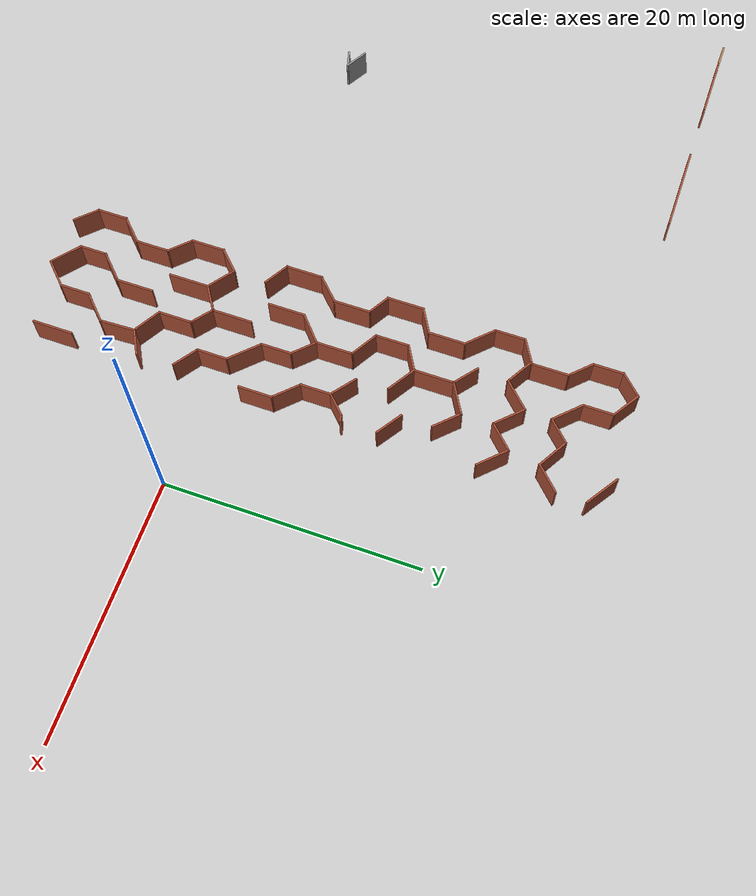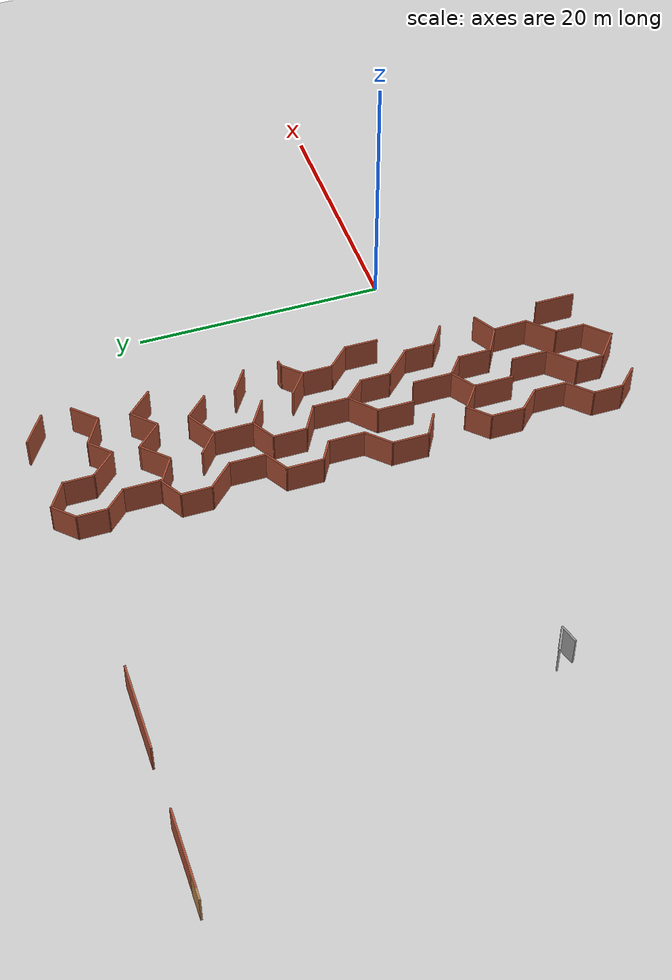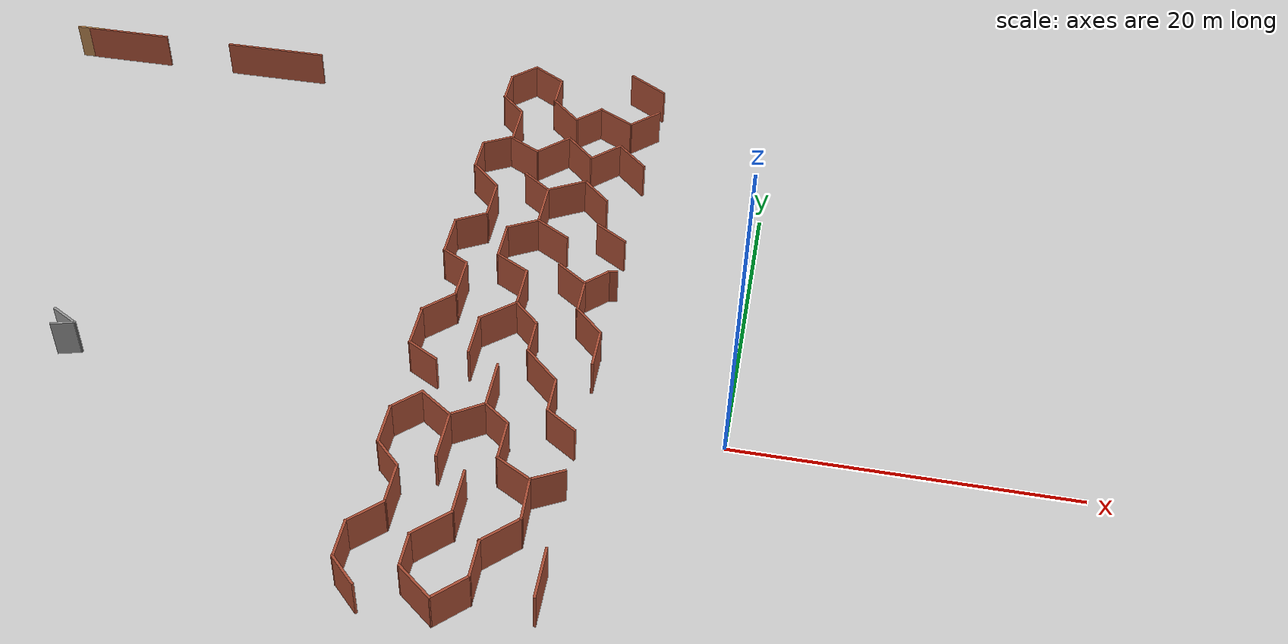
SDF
<sdf version="1.6">
 <world name="default">
  <model name="maze_rect_3">
   <pose>4e-06 -9.9e-05 0 0 -0 1.57001</pose>
   <link name="Wall_100">
    <collision name="Wall_100_Collision">
     <geometry><box><size>3 0.15 2.5</size></box></geometry>
     <pose>0 0 1.25 0 -0 0</pose>
    </collision>
    <visual name="Wall_100_Visual">
     <pose>0 0 1.25 0 -0 0</pose>
     <geometry><box><size>3 0.15 2.5</size></box></geometry>
     <material>
      <script><uri>file://media/materials/scripts/gazebo.material</uri><name>Gazebo/Bricks</name></script>
      <ambient>1 1 1 1</ambient>
     </material>
     <meta><layer>0</layer></meta>
    </visual>
    <pose>8.41531 17.2964 0 0 -0 0</pose>
   </link>
   <link name="Wall_101">
    <collision name="Wall_101_Collision">
     <geometry><box><size>2 0.15 2.5</size></box></geometry>
     <pose>0 0 1.25 0 -0 0</pose>
    </collision>
    <visual name="Wall_101_Visual">
     <pose>0 0 1.25 0 -0 0</pose>
     <geometry><box><size>2 0.15 2.5</size></box></geometry>
     <material>
      <script><uri>file://media/materials/scripts/gazebo.material</uri><name>Gazebo/Bricks</name></script>
      <ambient>1 1 1 1</ambient>
     </material>
     <meta><layer>0</layer></meta>
    </visual>
    <pose>10.3028 18.0975 0 0 -0 1.0472</pose>
   </link>
   <link name="Wall_102">
    <collision name="Wall_102_Collision">
     <geometry><box><size>3 0.15 2.5</size></box></geometry>
     <pose>0 0 1.25 0 -0 0</pose>
    </collision>
    <visual name="Wall_102_Visual">
     <pose>0 0 1.25 0 -0 0</pose>
     <geometry><box><size>3 0.15 2.5</size></box></geometry>
     <material>
      <script><uri>file://media/materials/scripts/gazebo.material</uri><name>Gazebo/Bricks</name></script>
      <ambient>1 1 1 1</ambient>
     </material>
     <meta><layer>0</layer></meta>
    </visual>
    <pose>12.1903 18.8985 0 0 -0 0</pose>
   </link>
   <link name="Wall_103">
    <collision name="Wall_103_Collision">
     <geometry><box><size>2.25 0.15 2.5</size></box></geometry>
     <pose>0 0 1.25 0 -0 0</pose>
    </collision>
    <visual name="Wall_103_Visual">
     <pose>0 0 1.25 0 -0 0</pose>
     <geometry><box><size>2.25 0.15 2.5</size></box></geometry>
     <material>
      <script><uri>file://media/materials/scripts/gazebo.material</uri><name>Gazebo/Bricks</name></script>
      <ambient>1 1 1 1</ambient>
     </material>
     <meta><layer>0</layer></meta>
    </visual>
    <pose>14.1403 17.9892 0 0 -0 -1.0472</pose>
   </link>
   <link name="Wall_104">
    <collision name="Wall_104_Collision">
     <geometry><box><size>3 0.15 2.5</size></box></geometry>
     <pose>0 0 1.25 0 -0 0</pose>
    </collision>
    <visual name="Wall_104_Visual">
     <pose>0 0 1.25 0 -0 0</pose>
     <geometry><box><size>3 0.15 2.5</size></box></geometry>
     <material>
      <script><uri>file://media/materials/scripts/gazebo.material</uri><name>Gazebo/Bricks</name></script>
      <ambient>1 1 1 1</ambient>
     </material>
     <meta><layer>0</layer></meta>
    </visual>
    <pose>16.0903 17.0799 0 0 -0 0</pose>
   </link>
   <link name="Wall_105">
    <collision name="Wall_105_Collision">
     <geometry><box><size>2.75 0.15 2.5</size></box></geometry>
     <pose>0 0 1.25 0 -0 0</pose>
    </collision>
    <visual name="Wall_105_Visual">
     <pose>0 0 1.25 0 -0 0</pose>
     <geometry><box><size>2.75 0.15 2.5</size></box></geometry>
     <material>
      <script><uri>file://media/materials/scripts/gazebo.material</uri><name>Gazebo/Bricks</name></script>
      <ambient>1 1 1 1</ambient>
     </material>
     <meta><layer>0</layer></meta>
    </visual>
    <pose>18.4346 17.9991 0 0 -0 0.785398</pose>
   </link>
   <link name="Wall_106">
    <collision name="Wall_106_Collision">
     <geometry><box><size>2.5 0.15 2.5</size></box></geometry>
     <pose>0 0 1.25 0 -0 0</pose>
    </collision>
    <visual name="Wall_106_Visual">
     <pose>0 0 1.25 0 -0 0</pose>
     <geometry><box><size>2.5 0.15 2.5</size></box></geometry>
     <material>
      <script><uri>file://media/materials/scripts/gazebo.material</uri><name>Gazebo/Bricks</name></script>
      <ambient>1 1 1 1</ambient>
     </material>
     <meta><layer>0</layer></meta>
    </visual>
    <pose>20.5288 18.9183 0 0 -0 0</pose>
   </link>
   <link name="Wall_107">
    <collision name="Wall_107_Collision">
     <geometry><box><size>2.25 0.15 2.5</size></box></geometry>
     <pose>0 0 1.25 0 -0 0</pose>
    </collision>
    <visual name="Wall_107_Visual">
     <pose>0 0 1.25 0 -0 0</pose>
     <geometry><box><size>2.25 0.15 2.5</size></box></geometry>
     <material>
      <script><uri>file://media/materials/scripts/gazebo.material</uri><name>Gazebo/Bricks</name></script>
      <ambient>1 1 1 1</ambient>
     </material>
     <meta><layer>0</layer></meta>
    </visual>
    <pose>22.2288 18.009 0 0 -0 -1.0472</pose>
   </link>
   <link name="Wall_108">
    <collision name="Wall_108_Collision">
     <geometry><box><size>3 0.15 2.5</size></box></geometry>
     <pose>0 0 1.25 0 -0 0</pose>
    </collision>
    <visual name="Wall_108_Visual">
     <pose>0 0 1.25 0 -0 0</pose>
     <geometry><box><size>3 0.15 2.5</size></box></geometry>
     <material>
      <script><uri>file://media/materials/scripts/gazebo.material</uri><name>Gazebo/Bricks</name></script>
      <ambient>1 1 1 1</ambient>
     </material>
     <meta><layer>0</layer></meta>
    </visual>
    <pose>24.1788 17.0997 0 0 -0 0</pose>
   </link>
   <link name="Wall_109">
    <collision name="Wall_109_Collision">
     <geometry><box><size>2.25 0.15 2.5</size></box></geometry>
     <pose>0 0 1.25 0 -0 0</pose>
    </collision>
    <visual name="Wall_109_Visual">
     <pose>0 0 1.25 0 -0 0</pose>
     <geometry><box><size>2.25 0.15 2.5</size></box></geometry>
     <material>
      <script><uri>file://media/materials/scripts/gazebo.material</uri><name>Gazebo/Bricks</name></script>
      <ambient>1 1 1 1</ambient>
     </material>
     <meta><layer>0</layer></meta>
    </visual>
    <pose>26.3463 17.8422 0 0 -0 0.785398</pose>
   </link>
   <link name="Wall_110">
    <collision name="Wall_110_Collision">
     <geometry><box><size>2.5 0.15 2.5</size></box></geometry>
     <pose>0 0 1.25 0 -0 0</pose>
    </collision>
    <visual name="Wall_110_Visual">
     <pose>0 0 1.25 0 -0 0</pose>
     <geometry><box><size>2.5 0.15 2.5</size></box></geometry>
     <material>
      <script><uri>file://media/materials/scripts/gazebo.material</uri><name>Gazebo/Bricks</name></script>
      <ambient>1 1 1 1</ambient>
     </material>
     <meta><layer>0</layer></meta>
    </visual>
    <pose>28.2637 18.5846 0 0 -0 0</pose>
   </link>
   <link name="Wall_111">
    <collision name="Wall_111_Collision">
     <geometry><box><size>2.25 0.15 2.5</size></box></geometry>
     <pose>0 0 1.25 0 -0 0</pose>
    </collision>
    <visual name="Wall_111_Visual">
     <pose>0 0 1.25 0 -0 0</pose>
     <geometry><box><size>2.25 0.15 2.5</size></box></geometry>
     <material>
      <script><uri>file://media/materials/scripts/gazebo.material</uri><name>Gazebo/Bricks</name></script>
      <ambient>1 1 1 1</ambient>
     </material>
     <meta><layer>0</layer></meta>
    </visual>
    <pose>30.1812 17.8422 0 0 -0 -0.785398</pose>
   </link>
   <link name="Wall_326">
    <collision name="Wall_326_Collision">
     <geometry><box><size>2.5 0.15 2.5</size></box></geometry>
     <pose>0 0 1.25 0 -0 0</pose>
    </collision>
    <visual name="Wall_326_Visual">
     <pose>0 0 1.25 0 -0 0</pose>
     <geometry><box><size>2.5 0.15 2.5</size></box></geometry>
     <material>
      <script><uri>file://media/materials/scripts/gazebo.material</uri><name>Gazebo/Bricks</name></script>
      <ambient>1 1 1 1</ambient>
     </material>
     <meta><layer>0</layer></meta>
    </visual>
    <pose>26.4599 8.67528 0 0 -0 2.35619</pose>
   </link>
   <link name="Wall_327">
    <collision name="Wall_327_Collision">
     <geometry><box><size>2.75 0.15 2.5</size></box></geometry>
     <pose>0 0 1.25 0 -0 0</pose>
    </collision>
    <visual name="Wall_327_Visual">
     <pose>0 0 1.25 0 -0 0</pose>
     <geometry><box><size>2.75 0.15 2.5</size></box></geometry>
     <material>
      <script><uri>file://media/materials/scripts/gazebo.material</uri><name>Gazebo/Bricks</name></script>
      <ambient>1 1 1 1</ambient>
     </material>
     <meta><layer>0</layer></meta>
    </visual>
    <pose>26.279 10.632 0 0 -0 1.0472</pose>
   </link>
   <link name="Wall_328">
    <collision name="Wall_328_Collision">
     <geometry><box><size>2.25 0.15 2.5</size></box></geometry>
     <pose>0 0 1.25 0 -0 0</pose>
    </collision>
    <visual name="Wall_328_Visual">
     <pose>0 0 1.25 0 -0 0</pose>
     <geometry><box><size>2.25 0.15 2.5</size></box></geometry>
     <material>
      <script><uri>file://media/materials/scripts/gazebo.material</uri><name>Gazebo/Bricks</name></script>
      <ambient>1 1 1 1</ambient>
     </material>
     <meta><layer>0</layer></meta>
    </visual>
    <pose>26.1866 12.5003 0 0 -0 2.35619</pose>
   </link>
   <link name="Wall_329">
    <collision name="Wall_329_Collision">
     <geometry><box><size>2.75 0.15 2.5</size></box></geometry>
     <pose>0 0 1.25 0 -0 0</pose>
    </collision>
    <visual name="Wall_329_Visual">
     <pose>0 0 1.25 0 -0 0</pose>
     <geometry><box><size>2.75 0.15 2.5</size></box></geometry>
     <material>
      <script><uri>file://media/materials/scripts/gazebo.material</uri><name>Gazebo/Bricks</name></script>
      <ambient>1 1 1 1</ambient>
     </material>
     <meta><layer>0</layer></meta>
    </visual>
    <pose>26.3633 14.162 0 0 -0 0.785398</pose>
   </link>
   <link name="Wall_330">
    <collision name="Wall_330_Collision">
     <geometry><box><size>2.5 0.15 2.5</size></box></geometry>
     <pose>0 0 1.25 0 -0 0</pose>
    </collision>
    <visual name="Wall_330_Visual">
     <pose>0 0 1.25 0 -0 0</pose>
     <geometry><box><size>2.5 0.15 2.5</size></box></geometry>
     <material>
      <script><uri>file://media/materials/scripts/gazebo.material</uri><name>Gazebo/Bricks</name></script>
      <ambient>1 1 1 1</ambient>
     </material>
     <meta><layer>0</layer></meta>
    </visual>
    <pose>28.4576 15.0812 0 0 -0 0</pose>
   </link>
   <link name="Wall_331">
    <collision name="Wall_331_Collision">
     <geometry><box><size>2.54607 0.15 2.5</size></box></geometry>
     <pose>0 0 1.25 0 -0 0</pose>
    </collision>
    <visual name="Wall_331_Visual">
     <pose>0 0 1.25 0 -0 0</pose>
     <geometry><box><size>2.54607 0.15 2.5</size></box></geometry>
     <material>
      <script><uri>file://media/materials/scripts/gazebo.material</uri><name>Gazebo/Bricks</name></script>
      <ambient>1 1 1 1</ambient>
     </material>
     <meta><layer>0</layer></meta>
    </visual>
    <pose>30.2781 16.0904 0 0 -0 1.00176</pose>
   </link>
   <link name="Wall_333">
    <collision name="Wall_333_Collision">
     <geometry><box><size>3.00629 0.15 2.5</size></box></geometry>
     <pose>0 0 1.25 0 -0 0</pose>
    </collision>
    <visual name="Wall_333_Visual">
     <pose>0 0 1.25 0 -0 0</pose>
     <geometry><box><size>3.00629 0.15 2.5</size></box></geometry>
     <material>
      <script><uri>file://media/materials/scripts/gazebo.material</uri><name>Gazebo/Bricks</name></script>
      <ambient>1 1 1 1</ambient>
     </material>
     <meta><layer>0</layer></meta>
    </visual>
    <pose>30.4256 9.03758 0 0 -0 -2.15263</pose>
   </link>
   <link name="Wall_349">
    <collision name="Wall_349_Collision">
     <geometry><box><size>2.75 0.15 2.5</size></box></geometry>
     <pose>0 0 1.25 0 -0 0</pose>
    </collision>
    <visual name="Wall_349_Visual">
     <pose>0 0 1.25 0 -0 0</pose>
     <geometry><box><size>2.75 0.15 2.5</size></box></geometry>
     <material>
      <script><uri>file://media/materials/scripts/gazebo.material</uri><name>Gazebo/Bricks</name></script>
      <ambient>1 1 1 1</ambient>
     </material>
     <meta><layer>0</layer></meta>
    </visual>
    <pose>22.2555 8.91948 0 0 -0 0.785398</pose>
   </link>
   <link name="Wall_350">
    <collision name="Wall_350_Collision">
     <geometry><box><size>2.5 0.15 2.5</size></box></geometry>
     <pose>0 0 1.25 0 -0 0</pose>
    </collision>
    <visual name="Wall_350_Visual">
     <pose>0 0 1.25 0 -0 0</pose>
     <geometry><box><size>2.5 0.15 2.5</size></box></geometry>
     <material>
      <script><uri>file://media/materials/scripts/gazebo.material</uri><name>Gazebo/Bricks</name></script>
      <ambient>1 1 1 1</ambient>
     </material>
     <meta><layer>0</layer></meta>
    </visual>
    <pose>22.3439 10.6696 0 0 -0 2.35619</pose>
   </link>
   <link name="Wall_351">
    <collision name="Wall_351_Collision">
     <geometry><box><size>2.75 0.15 2.5</size></box></geometry>
     <pose>0 0 1.25 0 -0 0</pose>
    </collision>
    <visual name="Wall_351_Visual">
     <pose>0 0 1.25 0 -0 0</pose>
     <geometry><box><size>2.75 0.15 2.5</size></box></geometry>
     <material>
      <script><uri>file://media/materials/scripts/gazebo.material</uri><name>Gazebo/Bricks</name></script>
      <ambient>1 1 1 1</ambient>
     </material>
     <meta><layer>0</layer></meta>
    </visual>
    <pose>22.4323 12.4197 0 0 -0 0.785398</pose>
   </link>
   <link name="Wall_352">
    <collision name="Wall_352_Collision">
     <geometry><box><size>2.75 0.15 2.5</size></box></geometry>
     <pose>0 0 1.25 0 -0 0</pose>
    </collision>
    <visual name="Wall_352_Visual">
     <pose>0 0 1.25 0 -0 0</pose>
     <geometry><box><size>2.75 0.15 2.5</size></box></geometry>
     <material>
      <script><uri>file://media/materials/scripts/gazebo.material</uri><name>Gazebo/Bricks</name></script>
      <ambient>1 1 1 1</ambient>
     </material>
     <meta><layer>0</layer></meta>
    </visual>
    <pose>22.4323 14.2581 0 0 -0 2.35619</pose>
   </link>
   <link name="Wall_354">
    <collision name="Wall_354_Collision">
     <geometry><box><size>2.5 0.15 2.5</size></box></geometry>
     <pose>0 0 1.25 0 -0 0</pose>
    </collision>
    <visual name="Wall_354_Visual">
     <pose>0 0 1.25 0 -0 0</pose>
     <geometry><box><size>2.5 0.15 2.5</size></box></geometry>
     <material>
      <script><uri>file://media/materials/scripts/gazebo.material</uri><name>Gazebo/Bricks</name></script>
      <ambient>1 1 1 1</ambient>
     </material>
     <meta><layer>0</layer></meta>
    </visual>
    <pose>22.1006 16.195 0 0 -0 1.0472</pose>
   </link>
   <link name="Wall_399">
    <collision name="Wall_399_Collision">
     <geometry><box><size>2.36913 0.15 2.5</size></box></geometry>
     <pose>0 0 1.25 0 -0 0</pose>
    </collision>
    <visual name="Wall_399_Visual">
     <pose>0 0 1.25 0 -0 0</pose>
     <geometry><box><size>2.36913 0.15 2.5</size></box></geometry>
     <material>
      <script><uri>file://media/materials/scripts/gazebo.material</uri><name>Gazebo/Bricks</name></script>
      <ambient>1 1 1 1</ambient>
     </material>
     <meta><layer>0</layer></meta>
    </visual>
    <pose>14.3383 8.97913 0 0 -0 -2.15123</pose>
   </link>
   <link name="Wall_401">
    <collision name="Wall_401_Collision">
     <geometry><box><size>2.5 0.15 2.5</size></box></geometry>
     <pose>0 0 1.25 0 -0 0</pose>
    </collision>
    <visual name="Wall_401_Visual">
     <pose>0 0 1.25 0 -0 0</pose>
     <geometry><box><size>2.5 0.15 2.5</size></box></geometry>
     <material>
      <script><uri>file://media/materials/scripts/gazebo.material</uri><name>Gazebo/Bricks</name></script>
      <ambient>1 1 1 1</ambient>
     </material>
     <meta><layer>0</layer></meta>
    </visual>
    <pose>18.211 10.632 0 0 -0 0.785398</pose>
   </link>
   <link name="Wall_402">
    <collision name="Wall_402_Collision">
     <geometry><box><size>2.75 0.15 2.5</size></box></geometry>
     <pose>0 0 1.25 0 -0 0</pose>
    </collision>
    <visual name="Wall_402_Visual">
     <pose>0 0 1.25 0 -0 0</pose>
     <geometry><box><size>2.75 0.15 2.5</size></box></geometry>
     <material>
      <script><uri>file://media/materials/scripts/gazebo.material</uri><name>Gazebo/Bricks</name></script>
      <ambient>1 1 1 1</ambient>
     </material>
     <meta><layer>0</layer></meta>
    </visual>
    <pose>18.3918 12.5887 0 0 -0 2.0944</pose>
   </link>
   <link name="Wall_403">
    <collision name="Wall_403_Collision">
     <geometry><box><size>3.25 0.15 2.5</size></box></geometry>
     <pose>0 0 1.25 0 -0 0</pose>
    </collision>
    <visual name="Wall_403_Visual">
     <pose>0 0 1.25 0 -0 0</pose>
     <geometry><box><size>3.25 0.15 2.5</size></box></geometry>
     <material>
      <script><uri>file://media/materials/scripts/gazebo.material</uri><name>Gazebo/Bricks</name></script>
      <ambient>1 1 1 1</ambient>
     </material>
     <meta><layer>0</layer></meta>
    </visual>
    <pose>16.1918 13.7145 0 0 -0 3.14159</pose>
   </link>
   <link name="Wall_404">
    <collision name="Wall_404_Collision">
     <geometry><box><size>2.25 0.15 2.5</size></box></geometry>
     <pose>0 0 1.25 0 -0 0</pose>
    </collision>
    <visual name="Wall_404_Visual">
     <pose>0 0 1.25 0 -0 0</pose>
     <geometry><box><size>2.25 0.15 2.5</size></box></geometry>
     <material>
      <script><uri>file://media/materials/scripts/gazebo.material</uri><name>Gazebo/Bricks</name></script>
      <ambient>1 1 1 1</ambient>
     </material>
     <meta><layer>0</layer></meta>
    </visual>
    <pose>14.1168 14.6239 0 0 -0 2.0944</pose>
   </link>
   <link name="Wall_405">
    <collision name="Wall_405_Collision">
     <geometry><box><size>2.75 0.15 2.5</size></box></geometry>
     <pose>0 0 1.25 0 -0 0</pose>
    </collision>
    <visual name="Wall_405_Visual">
     <pose>0 0 1.25 0 -0 0</pose>
     <geometry><box><size>2.75 0.15 2.5</size></box></geometry>
     <material>
      <script><uri>file://media/materials/scripts/gazebo.material</uri><name>Gazebo/Bricks</name></script>
      <ambient>1 1 1 1</ambient>
     </material>
     <meta><layer>0</layer></meta>
    </visual>
    <pose>12.2918 15.5332 0 0 -0 3.14159</pose>
   </link>
   <link name="Wall_406">
    <collision name="Wall_406_Collision">
     <geometry><box><size>2.5 0.15 2.5</size></box></geometry>
     <pose>0 0 1.25 0 -0 0</pose>
    </collision>
    <visual name="Wall_406_Visual">
     <pose>0 0 1.25 0 -0 0</pose>
     <geometry><box><size>2.5 0.15 2.5</size></box></geometry>
     <material>
      <script><uri>file://media/materials/scripts/gazebo.material</uri><name>Gazebo/Bricks</name></script>
      <ambient>1 1 1 1</ambient>
     </material>
     <meta><layer>0</layer></meta>
    </visual>
    <pose>10.4043 14.5156 0 0 -0 -2.0944</pose>
   </link>
   <link name="Wall_407">
    <collision name="Wall_407_Collision">
     <geometry><box><size>3 0.15 2.5</size></box></geometry>
     <pose>0 0 1.25 0 -0 0</pose>
    </collision>
    <visual name="Wall_407_Visual">
     <pose>0 0 1.25 0 -0 0</pose>
     <geometry><box><size>3 0.15 2.5</size></box></geometry>
     <material>
      <script><uri>file://media/materials/scripts/gazebo.material</uri><name>Gazebo/Bricks</name></script>
      <ambient>1 1 1 1</ambient>
     </material>
     <meta><layer>0</layer></meta>
    </visual>
    <pose>8.39183 13.498 0 0 -0 3.14159</pose>
   </link>
   <link name="Wall_408">
    <collision name="Wall_408_Collision">
     <geometry><box><size>2.25 0.15 2.5</size></box></geometry>
     <pose>0 0 1.25 0 -0 0</pose>
    </collision>
    <visual name="Wall_408_Visual">
     <pose>0 0 1.25 0 -0 0</pose>
     <geometry><box><size>2.25 0.15 2.5</size></box></geometry>
     <material>
      <script><uri>file://media/materials/scripts/gazebo.material</uri><name>Gazebo/Bricks</name></script>
      <ambient>1 1 1 1</ambient>
     </material>
     <meta><layer>0</layer></meta>
    </visual>
    <pose>6.22436 12.7556 0 0 -0 -2.35619</pose>
   </link>
   <link name="Wall_409">
    <collision name="Wall_409_Collision">
     <geometry><box><size>2.5 0.15 2.5</size></box></geometry>
     <pose>0 0 1.25 0 -0 0</pose>
    </collision>
    <visual name="Wall_409_Visual">
     <pose>0 0 1.25 0 -0 0</pose>
     <geometry><box><size>2.5 0.15 2.5</size></box></geometry>
     <material>
      <script><uri>file://media/materials/scripts/gazebo.material</uri><name>Gazebo/Bricks</name></script>
      <ambient>1 1 1 1</ambient>
     </material>
     <meta><layer>0</layer></meta>
    </visual>
    <pose>4.3069 12.0131 0 0 -0 3.14159</pose>
   </link>
   <link name="Wall_410">
    <collision name="Wall_410_Collision">
     <geometry><box><size>3 0.15 2.5</size></box></geometry>
     <pose>0 0 1.25 0 -0 0</pose>
    </collision>
    <visual name="Wall_410_Visual">
     <pose>0 0 1.25 0 -0 0</pose>
     <geometry><box><size>3 0.15 2.5</size></box></geometry>
     <material>
      <script><uri>file://media/materials/scripts/gazebo.material</uri><name>Gazebo/Bricks</name></script>
      <ambient>1 1 1 1</ambient>
     </material>
     <meta><layer>0</layer></meta>
    </visual>
    <pose>2.12428 11.0055 0 0 -0 -2.35619</pose>
   </link>
   <link name="Wall_411">
    <collision name="Wall_411_Collision">
     <geometry><box><size>2.5 0.15 2.5</size></box></geometry>
     <pose>0 0 1.25 0 -0 0</pose>
    </collision>
    <visual name="Wall_411_Visual">
     <pose>0 0 1.25 0 -0 0</pose>
     <geometry><box><size>2.5 0.15 2.5</size></box></geometry>
     <material>
      <script><uri>file://media/materials/scripts/gazebo.material</uri><name>Gazebo/Bricks</name></script>
      <ambient>1 1 1 1</ambient>
     </material>
     <meta><layer>0</layer></meta>
    </visual>
    <pose>-0.058351 9.99786 0 0 -0 3.14159</pose>
   </link>
   <link name="Wall_412">
    <collision name="Wall_412_Collision">
     <geometry><box><size>2.274 0.15 2.5</size></box></geometry>
     <pose>0 0 1.25 0 -0 0</pose>
    </collision>
    <visual name="Wall_412_Visual">
     <pose>0 0 1.25 0 -0 0</pose>
     <geometry><box><size>2.274 0.15 2.5</size></box></geometry>
     <material>
      <script><uri>file://media/materials/scripts/gazebo.material</uri><name>Gazebo/Bricks</name></script>
      <ambient>1 1 1 1</ambient>
     </material>
     <meta><layer>0</layer></meta>
    </visual>
    <pose>-1.83906 9.12552 0 0 -0 -2.17772</pose>
   </link>
   <link name="Wall_416">
    <collision name="Wall_416_Collision">
     <geometry><box><size>2.75 0.15 2.5</size></box></geometry>
     <pose>0 0 1.25 0 -0 0</pose>
    </collision>
    <visual name="Wall_416_Visual">
     <pose>0 0 1.25 0 -0 0</pose>
     <geometry><box><size>2.75 0.15 2.5</size></box></geometry>
     <material>
      <script><uri>file://media/materials/scripts/gazebo.material</uri><name>Gazebo/Bricks</name></script>
      <ambient>1 1 1 1</ambient>
     </material>
     <meta><layer>0</layer></meta>
    </visual>
    <pose>4.15157 8.15938 0 0 -0 0</pose>
   </link>
   <link name="Wall_417">
    <collision name="Wall_417_Collision">
     <geometry><box><size>2.5 0.15 2.5</size></box></geometry>
     <pose>0 0 1.25 0 -0 0</pose>
    </collision>
    <visual name="Wall_417_Visual">
     <pose>0 0 1.25 0 -0 0</pose>
     <geometry><box><size>2.5 0.15 2.5</size></box></geometry>
     <material>
      <script><uri>file://media/materials/scripts/gazebo.material</uri><name>Gazebo/Bricks</name></script>
      <ambient>1 1 1 1</ambient>
     </material>
     <meta><layer>0</layer></meta>
    </visual>
    <pose>6.28242 8.99023 0 0 -0 0.785398</pose>
   </link>
   <link name="Wall_418">
    <collision name="Wall_418_Collision">
     <geometry><box><size>2.5 0.15 2.5</size></box></geometry>
     <pose>0 0 1.25 0 -0 0</pose>
    </collision>
    <visual name="Wall_418_Visual">
     <pose>0 0 1.25 0 -0 0</pose>
     <geometry><box><size>2.5 0.15 2.5</size></box></geometry>
     <material>
      <script><uri>file://media/materials/scripts/gazebo.material</uri><name>Gazebo/Bricks</name></script>
      <ambient>1 1 1 1</ambient>
     </material>
     <meta><layer>0</layer></meta>
    </visual>
    <pose>8.28827 9.82108 0 0 -0 0</pose>
   </link>
   <link name="Wall_419">
    <collision name="Wall_419_Collision">
     <geometry><box><size>2 0.15 2.5</size></box></geometry>
     <pose>0 0 1.25 0 -0 0</pose>
    </collision>
    <visual name="Wall_419_Visual">
     <pose>0 0 1.25 0 -0 0</pose>
     <geometry><box><size>2 0.15 2.5</size></box></geometry>
     <material>
      <script><uri>file://media/materials/scripts/gazebo.material</uri><name>Gazebo/Bricks</name></script>
      <ambient>1 1 1 1</ambient>
     </material>
     <meta><layer>0</layer></meta>
    </visual>
    <pose>10.1173 9.16701 0 0 -0 -0.785398</pose>
   </link>
   <link name="Wall_420">
    <collision name="Wall_420_Collision">
     <geometry><box><size>0.624192 0.15 2.5</size></box></geometry>
     <pose>0 0 1.25 0 -0 0</pose>
    </collision>
    <visual name="Wall_420_Visual">
     <pose>0 0 1.25 0 -0 0</pose>
     <geometry><box><size>0.624192 0.15 2.5</size></box></geometry>
     <material>
      <script><uri>file://media/materials/scripts/gazebo.material</uri><name>Gazebo/Bricks</name></script>
      <ambient>1 1 1 1</ambient>
     </material>
     <meta><layer>0</layer></meta>
    </visual>
    <pose>10.8256 8.28211 0 0 -0 -1.34024</pose>
   </link>
   <link name="Wall_422">
    <collision name="Wall_422_Collision">
     <geometry><box><size>2.30443 0.15 2.5</size></box></geometry>
     <pose>0 0 1.25 0 -0 0</pose>
    </collision>
    <visual name="Wall_422_Visual">
     <pose>0 0 1.25 0 -0 0</pose>
     <geometry><box><size>2.30443 0.15 2.5</size></box></geometry>
     <material>
      <script><uri>file://media/materials/scripts/gazebo.material</uri><name>Gazebo/Bricks</name></script>
      <ambient>1 1 1 1</ambient>
     </material>
     <meta><layer>0</layer></meta>
    </visual>
    <pose>18.4074 14.5616 0 0 -0 -2.23679</pose>
   </link>
   <link name="Wall_424">
    <collision name="Wall_424_Collision">
     <geometry><box><size>2.57798 0.15 2.5</size></box></geometry>
     <pose>0 0 1.25 0 -0 0</pose>
    </collision>
    <visual name="Wall_424_Visual">
     <pose>0 0 1.25 0 -0 0</pose>
     <geometry><box><size>2.57798 0.15 2.5</size></box></geometry>
     <material>
      <script><uri>file://media/materials/scripts/gazebo.material</uri><name>Gazebo/Bricks</name></script>
      <ambient>1 1 1 1</ambient>
     </material>
     <meta><layer>0</layer></meta>
    </visual>
    <pose>14.0008 12.6836 0 0 -0 1.01449</pose>
   </link>
   <link name="Wall_426">
    <collision name="Wall_426_Collision">
     <geometry><box><size>2.38738 0.15 2.5</size></box></geometry>
     <pose>0 0 1.25 0 -0 0</pose>
    </collision>
    <visual name="Wall_426_Visual">
     <pose>0 0 1.25 0 -0 0</pose>
     <geometry><box><size>2.38738 0.15 2.5</size></box></geometry>
     <material>
      <script><uri>file://media/materials/scripts/gazebo.material</uri><name>Gazebo/Bricks</name></script>
      <ambient>1 1 1 1</ambient>
     </material>
     <meta><layer>0</layer></meta>
    </visual>
    <pose>10.1419 10.7104 0 0 -0 -2.2226</pose>
   </link>
   <link name="Wall_428">
    <collision name="Wall_428_Collision">
     <geometry><box><size>3 0.15 2.5</size></box></geometry>
     <pose>0 0 1.25 0 -0 0</pose>
    </collision>
    <visual name="Wall_428_Visual">
     <pose>0 0 1.25 0 -0 0</pose>
     <geometry><box><size>3 0.15 2.5</size></box></geometry>
     <material>
      <script><uri>file://media/materials/scripts/gazebo.material</uri><name>Gazebo/Bricks</name></script>
      <ambient>1 1 1 1</ambient>
     </material>
     <meta><layer>0</layer></meta>
    </visual>
    <pose>3.83443 15.4086 0 0 -0 0</pose>
   </link>
   <link name="Wall_429">
    <collision name="Wall_429_Collision">
     <geometry><box><size>2.7123 0.15 2.5</size></box></geometry>
     <pose>0 0 1.25 0 -0 0</pose>
    </collision>
    <visual name="Wall_429_Visual">
     <pose>0 0 1.25 0 -0 0</pose>
     <geometry><box><size>2.7123 0.15 2.5</size></box></geometry>
     <material>
      <script><uri>file://media/materials/scripts/gazebo.material</uri><name>Gazebo/Bricks</name></script>
      <ambient>1 1 1 1</ambient>
     </material>
     <meta><layer>0</layer></meta>
    </visual>
    <pose>6.11313 14.4533 0 0 -0 -0.841487</pose>
   </link>
   <link name="Wall_508">
    <collision name="Wall_508_Collision">
     <geometry><box><size>3.25 0.15 2.5</size></box></geometry>
     <pose>0 0 1.25 0 -0 0</pose>
    </collision>
    <visual name="Wall_508_Visual">
     <pose>0 0 1.25 0 -0 0</pose>
     <geometry><box><size>3.25 0.15 2.5</size></box></geometry>
     <material>
      <script><uri>file://media/materials/scripts/gazebo.material</uri><name>Gazebo/Bricks</name></script>
      <ambient>1 1 1 1</ambient>
     </material>
     <meta><layer>0</layer></meta>
    </visual>
    <pose>-4.18738 15.3235 0 0 -0 0</pose>
   </link>
   <link name="Wall_510">
    <collision name="Wall_510_Collision">
     <geometry><box><size>3.25 0.15 2.5</size></box></geometry>
     <pose>0 0 1.25 0 -0 0</pose>
    </collision>
    <visual name="Wall_510_Visual">
     <pose>0 0 1.25 0 -0 0</pose>
     <geometry><box><size>3.25 0.15 2.5</size></box></geometry>
     <material>
      <script><uri>file://media/materials/scripts/gazebo.material</uri><name>Gazebo/Bricks</name></script>
      <ambient>1 1 1 1</ambient>
     </material>
     <meta><layer>0</layer></meta>
    </visual>
    <pose>0.103697 13.5095 0 0 -0 3.14159</pose>
   </link>
   <link name="Wall_512">
    <collision name="Wall_512_Collision">
     <geometry><box><size>3 0.15 2.5</size></box></geometry>
     <pose>0 0 1.25 0 -0 0</pose>
    </collision>
    <visual name="Wall_512_Visual">
     <pose>0 0 1.25 0 -0 0</pose>
     <geometry><box><size>3 0.15 2.5</size></box></geometry>
     <material>
      <script><uri>file://media/materials/scripts/gazebo.material</uri><name>Gazebo/Bricks</name></script>
      <ambient>1 1 1 1</ambient>
     </material>
     <meta><layer>0</layer></meta>
    </visual>
    <pose>-7.95217 13.5465 0 0 -0 3.14159</pose>
   </link>
   <link name="Wall_513">
    <collision name="Wall_513_Collision">
     <geometry><box><size>2.75 0.15 2.5</size></box></geometry>
     <pose>0 0 1.25 0 -0 0</pose>
    </collision>
    <visual name="Wall_513_Visual">
     <pose>0 0 1.25 0 -0 0</pose>
     <geometry><box><size>2.75 0.15 2.5</size></box></geometry>
     <material>
      <script><uri>file://media/materials/scripts/gazebo.material</uri><name>Gazebo/Bricks</name></script>
      <ambient>1 1 1 1</ambient>
     </material>
     <meta><layer>0</layer></meta>
    </visual>
    <pose>-10.2964 14.4658 0 0 -0 2.35619</pose>
   </link>
   <link name="Wall_514">
    <collision name="Wall_514_Collision">
     <geometry><box><size>2.25 0.15 2.5</size></box></geometry>
     <pose>0 0 1.25 0 -0 0</pose>
    </collision>
    <visual name="Wall_514_Visual">
     <pose>0 0 1.25 0 -0 0</pose>
     <geometry><box><size>2.25 0.15 2.5</size></box></geometry>
     <material>
      <script><uri>file://media/materials/scripts/gazebo.material</uri><name>Gazebo/Bricks</name></script>
      <ambient>1 1 1 1</ambient>
     </material>
     <meta><layer>0</layer></meta>
    </visual>
    <pose>-12.2656 15.385 0 0 -0 3.14159</pose>
   </link>
   <link name="Wall_515">
    <collision name="Wall_515_Collision">
     <geometry><box><size>2.75234 0.15 2.5</size></box></geometry>
     <pose>0 0 1.25 0 -0 0</pose>
    </collision>
    <visual name="Wall_515_Visual">
     <pose>0 0 1.25 0 -0 0</pose>
     <geometry><box><size>2.75234 0.15 2.5</size></box></geometry>
     <material>
      <script><uri>file://media/materials/scripts/gazebo.material</uri><name>Gazebo/Bricks</name></script>
      <ambient>1 1 1 1</ambient>
     </material>
     <meta><layer>0</layer></meta>
    </visual>
    <pose>-14.1389 14.3774 0 0 -0 -2.25583</pose>
   </link>
   <link name="Wall_516">
    <collision name="Wall_516_Collision">
     <geometry><box><size>2.5 0.15 2.5</size></box></geometry>
     <pose>0 0 1.25 0 -0 0</pose>
    </collision>
    <visual name="Wall_516_Visual">
     <pose>0 0 1.25 0 -0 0</pose>
     <geometry><box><size>2.5 0.15 2.5</size></box></geometry>
     <material>
      <script><uri>file://media/materials/scripts/gazebo.material</uri><name>Gazebo/Bricks</name></script>
      <ambient>1 1 1 1</ambient>
     </material>
     <meta><layer>0</layer></meta>
    </visual>
    <pose>-14.1313 12.5389 0 0 -0 -0.785398</pose>
   </link>
   <link name="Wall_517">
    <collision name="Wall_517_Collision">
     <geometry><box><size>2.46958 0.15 2.5</size></box></geometry>
     <pose>0 0 1.25 0 -0 0</pose>
    </collision>
    <visual name="Wall_517_Visual">
     <pose>0 0 1.25 0 -0 0</pose>
     <geometry><box><size>2.46958 0.15 2.5</size></box></geometry>
     <material>
      <script><uri>file://media/materials/scripts/gazebo.material</uri><name>Gazebo/Bricks</name></script>
      <ambient>1 1 1 1</ambient>
     </material>
     <meta><layer>0</layer></meta>
    </visual>
    <pose>-12.1254 11.7081 0 0 -0 0</pose>
   </link>
   <link name="Wall_518">
    <collision name="Wall_518_Collision">
     <geometry><box><size>2.75 0.15 2.5</size></box></geometry>
     <pose>0 0 1.25 0 -0 0</pose>
    </collision>
    <visual name="Wall_518_Visual">
     <pose>0 0 1.25 0 -0 0</pose>
     <geometry><box><size>2.75 0.15 2.5</size></box></geometry>
     <material>
      <script><uri>file://media/materials/scripts/gazebo.material</uri><name>Gazebo/Bricks</name></script>
      <ambient>1 1 1 1</ambient>
     </material>
     <meta><layer>0</layer></meta>
    </visual>
    <pose>-10.0464 10.7888 0 0 -0 -0.785398</pose>
   </link>
   <link name="Wall_519">
    <collision name="Wall_519_Collision">
     <geometry><box><size>2.88225 0.15 2.5</size></box></geometry>
     <pose>0 0 1.25 0 -0 0</pose>
    </collision>
    <visual name="Wall_519_Visual">
     <pose>0 0 1.25 0 -0 0</pose>
     <geometry><box><size>2.88225 0.15 2.5</size></box></geometry>
     <material>
      <script><uri>file://media/materials/scripts/gazebo.material</uri><name>Gazebo/Bricks</name></script>
      <ambient>1 1 1 1</ambient>
     </material>
     <meta><layer>0</layer></meta>
    </visual>
    <pose>-7.76197 9.91991 0 0 -0 0.036844</pose>
   </link>
   <link name="Wall_65">
    <collision name="Wall_65_Collision">
     <geometry><box><size>2.25 0.15 2.5</size></box></geometry>
     <pose>0 0 1.25 0 -0 0</pose>
    </collision>
    <visual name="Wall_65_Visual">
     <pose>0 0 1.25 0 -0 0</pose>
     <geometry><box><size>2.25 0.15 2.5</size></box></geometry>
     <material>
      <script><uri>file://media/materials/scripts/gazebo.material</uri><name>Gazebo/Bricks</name></script>
      <ambient>1 1 1 1</ambient>
     </material>
     <meta><layer>0</layer></meta>
    </visual>
    <pose>-14.1556 18.1641 0 0 -0 0.785398</pose>
   </link>
   <link name="Wall_66">
    <collision name="Wall_66_Collision">
     <geometry><box><size>2.5 0.15 2.5</size></box></geometry>
     <pose>0 0 1.25 0 -0 0</pose>
    </collision>
    <visual name="Wall_66_Visual">
     <pose>0 0 1.25 0 -0 0</pose>
     <geometry><box><size>2.5 0.15 2.5</size></box></geometry>
     <material>
      <script><uri>file://media/materials/scripts/gazebo.material</uri><name>Gazebo/Bricks</name></script>
      <ambient>1 1 1 1</ambient>
     </material>
     <meta><layer>0</layer></meta>
    </visual>
    <pose>-12.2381 18.9065 0 0 -0 0</pose>
   </link>
   <link name="Wall_67">
    <collision name="Wall_67_Collision">
     <geometry><box><size>2.5 0.15 2.5</size></box></geometry>
     <pose>0 0 1.25 0 -0 0</pose>
    </collision>
    <visual name="Wall_67_Visual">
     <pose>0 0 1.25 0 -0 0</pose>
     <geometry><box><size>2.5 0.15 2.5</size></box></geometry>
     <material>
      <script><uri>file://media/materials/scripts/gazebo.material</uri><name>Gazebo/Bricks</name></script>
      <ambient>1 1 1 1</ambient>
     </material>
     <meta><layer>0</layer></meta>
    </visual>
    <pose>-10.2323 18.0757 0 0 -0 -0.785398</pose>
   </link>
   <link name="Wall_68">
    <collision name="Wall_68_Collision">
     <geometry><box><size>2.75 0.15 2.5</size></box></geometry>
     <pose>0 0 1.25 0 -0 0</pose>
    </collision>
    <visual name="Wall_68_Visual">
     <pose>0 0 1.25 0 -0 0</pose>
     <geometry><box><size>2.75 0.15 2.5</size></box></geometry>
     <material>
      <script><uri>file://media/materials/scripts/gazebo.material</uri><name>Gazebo/Bricks</name></script>
      <ambient>1 1 1 1</ambient>
     </material>
     <meta><layer>0</layer></meta>
    </visual>
    <pose>-8.10141 17.2448 0 0 -0 0</pose>
   </link>
   <link name="Wall_69">
    <collision name="Wall_69_Collision">
     <geometry><box><size>2.25 0.15 2.5</size></box></geometry>
     <pose>0 0 1.25 0 -0 0</pose>
    </collision>
    <visual name="Wall_69_Visual">
     <pose>0 0 1.25 0 -0 0</pose>
     <geometry><box><size>2.25 0.15 2.5</size></box></geometry>
     <material>
      <script><uri>file://media/materials/scripts/gazebo.material</uri><name>Gazebo/Bricks</name></script>
      <ambient>1 1 1 1</ambient>
     </material>
     <meta><layer>0</layer></meta>
    </visual>
    <pose>-6.05895 17.9873 0 0 -0 0.785398</pose>
   </link>
   <link name="Wall_699">
    <collision name="Wall_699_Collision">
     <geometry><box><size>3.25 0.15 2.5</size></box></geometry>
     <pose>0 0 1.25 0 -0 0</pose>
    </collision>
    <visual name="Wall_699_Visual">
     <pose>0 0 1.25 0 -0 0</pose>
     <geometry><box><size>3.25 0.15 2.5</size></box></geometry>
     <material>
      <script><uri>file://media/materials/scripts/gazebo.material</uri><name>Gazebo/Bricks</name></script>
      <ambient>1 1 1 1</ambient>
     </material>
     <meta><layer>0</layer></meta>
    </visual>
    <pose>-12.3342 8.17414 0 0 -0 0</pose>
   </link>
   <link name="Wall_70">
    <collision name="Wall_70_Collision">
     <geometry><box><size>2.75 0.15 2.5</size></box></geometry>
     <pose>0 0 1.25 0 -0 0</pose>
    </collision>
    <visual name="Wall_70_Visual">
     <pose>0 0 1.25 0 -0 0</pose>
     <geometry><box><size>2.75 0.15 2.5</size></box></geometry>
     <material>
      <script><uri>file://media/materials/scripts/gazebo.material</uri><name>Gazebo/Bricks</name></script>
      <ambient>1 1 1 1</ambient>
     </material>
     <meta><layer>0</layer></meta>
    </visual>
    <pose>-4.01648 18.7298 0 0 -0 0</pose>
   </link>
   <link name="Wall_71">
    <collision name="Wall_71_Collision">
     <geometry><box><size>2.25 0.15 2.5</size></box></geometry>
     <pose>0 0 1.25 0 -0 0</pose>
    </collision>
    <visual name="Wall_71_Visual">
     <pose>0 0 1.25 0 -0 0</pose>
     <geometry><box><size>2.25 0.15 2.5</size></box></geometry>
     <material>
      <script><uri>file://media/materials/scripts/gazebo.material</uri><name>Gazebo/Bricks</name></script>
      <ambient>1 1 1 1</ambient>
     </material>
     <meta><layer>0</layer></meta>
    </visual>
    <pose>-1.97402 17.9873 0 0 -0 -0.785398</pose>
   </link>
   <link name="Wall_72">
    <collision name="Wall_72_Collision">
     <geometry><box><size>2.53072 0.15 2.5</size></box></geometry>
     <pose>0 0 1.25 0 -0 0</pose>
    </collision>
    <visual name="Wall_72_Visual">
     <pose>0 0 1.25 0 -0 0</pose>
     <geometry><box><size>2.53072 0.15 2.5</size></box></geometry>
     <material>
      <script><uri>file://media/materials/scripts/gazebo.material</uri><name>Gazebo/Bricks</name></script>
      <ambient>1 1 1 1</ambient>
     </material>
     <meta><layer>0</layer></meta>
    </visual>
    <pose>-1.93447 16.2842 0 0 -0 -2.20248</pose>
   </link>
   <link name="Wall_73">
    <collision name="Wall_73_Collision">
     <geometry><box><size>2.32012 0.15 2.5</size></box></geometry>
     <pose>0 0 1.25 0 -0 0</pose>
    </collision>
    <visual name="Wall_73_Visual">
     <pose>0 0 1.25 0 -0 0</pose>
     <geometry><box><size>2.32012 0.15 2.5</size></box></geometry>
     <material>
      <script><uri>file://media/materials/scripts/gazebo.material</uri><name>Gazebo/Bricks</name></script>
      <ambient>1 1 1 1</ambient>
     </material>
     <meta><layer>0</layer></meta>
    </visual>
    <pose>-2.04184 14.4165 0 0 -0 -0.989804</pose>
   </link>
   <link name="Wall_74">
    <collision name="Wall_74_Collision">
     <geometry><box><size>2.05893 0.15 2.5</size></box></geometry>
     <pose>0 0 1.25 0 -0 0</pose>
    </collision>
    <visual name="Wall_74_Visual">
     <pose>0 0 1.25 0 -0 0</pose>
     <geometry><box><size>2.05893 0.15 2.5</size></box></geometry>
     <material>
      <script><uri>file://media/materials/scripts/gazebo.material</uri><name>Gazebo/Bricks</name></script>
      <ambient>1 1 1 1</ambient>
     </material>
     <meta><layer>0</layer></meta>
    </visual>
    <pose>-2.03404 12.7574 0 0 -0 -2.23417</pose>
   </link>
   <link name="Wall_75">
    <collision name="Wall_75_Collision">
     <geometry><box><size>2.75 0.15 2.5</size></box></geometry>
     <pose>0 0 1.25 0 -0 0</pose>
    </collision>
    <visual name="Wall_75_Visual">
     <pose>0 0 1.25 0 -0 0</pose>
     <geometry><box><size>2.75 0.15 2.5</size></box></geometry>
     <material>
      <script><uri>file://media/materials/scripts/gazebo.material</uri><name>Gazebo/Bricks</name></script>
      <ambient>1 1 1 1</ambient>
     </material>
     <meta><layer>0</layer></meta>
    </visual>
    <pose>-3.92178 12.0054 0 0 -0 3.14159</pose>
   </link>
   <link name="Wall_76">
    <collision name="Wall_76_Collision">
     <geometry><box><size>2.50045 0.15 2.5</size></box></geometry>
     <pose>0 0 1.25 0 -0 0</pose>
    </collision>
    <visual name="Wall_76_Visual">
     <pose>0 0 1.25 0 -0 0</pose>
     <geometry><box><size>2.50045 0.15 2.5</size></box></geometry>
     <material>
      <script><uri>file://media/materials/scripts/gazebo.material</uri><name>Gazebo/Bricks</name></script>
      <ambient>1 1 1 1</ambient>
     </material>
     <meta><layer>0</layer></meta>
    </visual>
    <pose>-5.80928 10.9878 0 0 -0 -2.0944</pose>
   </link>
   <link name="Wall_77">
    <collision name="Wall_77_Collision">
     <geometry><box><size>2.17608 0.15 2.5</size></box></geometry>
     <pose>0 0 1.25 0 -0 0</pose>
    </collision>
    <visual name="Wall_77_Visual">
     <pose>0 0 1.25 0 -0 0</pose>
     <geometry><box><size>2.17608 0.15 2.5</size></box></geometry>
     <material>
      <script><uri>file://media/materials/scripts/gazebo.material</uri><name>Gazebo/Bricks</name></script>
      <ambient>1 1 1 1</ambient>
     </material>
     <meta><layer>0</layer></meta>
    </visual>
    <pose>-5.90841 9.08269 0 0 -0 -1.06776</pose>
   </link>
   <link name="Wall_97">
    <collision name="Wall_97_Collision">
     <geometry><box><size>2.25 0.15 2.5</size></box></geometry>
     <pose>0 0 1.25 0 -0 0</pose>
    </collision>
    <visual name="Wall_97_Visual">
     <pose>0 0 1.25 0 -0 0</pose>
     <geometry><box><size>2.25 0.15 2.5</size></box></geometry>
     <material>
      <script><uri>file://media/materials/scripts/gazebo.material</uri><name>Gazebo/Bricks</name></script>
      <ambient>1 1 1 1</ambient>
     </material>
     <meta><layer>0</layer></meta>
    </visual>
    <pose>1.95361 18.0488 0 0 -0 1.0472</pose>
   </link>
   <link name="Wall_98">
    <collision name="Wall_98_Collision">
     <geometry><box><size>3 0.15 2.5</size></box></geometry>
     <pose>0 0 1.25 0 -0 0</pose>
    </collision>
    <visual name="Wall_98_Visual">
     <pose>0 0 1.25 0 -0 0</pose>
     <geometry><box><size>3 0.15 2.5</size></box></geometry>
     <material>
      <script><uri>file://media/materials/scripts/gazebo.material</uri><name>Gazebo/Bricks</name></script>
      <ambient>1 1 1 1</ambient>
     </material>
     <meta><layer>0</layer></meta>
    </visual>
    <pose>3.90361 18.9581 0 0 -0 0</pose>
   </link>
   <link name="Wall_99">
    <collision name="Wall_99_Collision">
     <geometry><box><size>2.5 0.15 2.5</size></box></geometry>
     <pose>0 0 1.25 0 -0 0</pose>
    </collision>
    <visual name="Wall_99_Visual">
     <pose>0 0 1.25 0 -0 0</pose>
     <geometry><box><size>2.5 0.15 2.5</size></box></geometry>
     <material>
      <script><uri>file://media/materials/scripts/gazebo.material</uri><name>Gazebo/Bricks</name></script>
      <ambient>1 1 1 1</ambient>
     </material>
     <meta><layer>0</layer></meta>
    </visual>
    <pose>6.15946 18.1272 0 0 -0 -0.785398</pose>
   </link>
   <static>1</static>
  </model>
  <model name="map_palace_v2_model_1">
   <pose>0 60 0 0 -0 0</pose>
   <link name="Wall_13">
    <collision name="Wall_13_Collision">
     <geometry><box><size>6 0.15 2.5</size></box></geometry>
     <pose>0 0 1.25 0 -0 0</pose>
    </collision>
    <visual name="Wall_13_Visual">
     <pose>0 0 1.25 0 -0 0</pose>
     <geometry><box><size>6 0.15 2.5</size></box></geometry>
     <material>
      <script><uri>file://media/materials/scripts/gazebo.material</uri><name>Gazebo/Bricks</name></script>
      <ambient>1 1 1 1</ambient>
     </material>
     <meta><layer>0</layer></meta>
    </visual>
    <pose>-47.1943 -30.6025 0 0 -0 0</pose>
   </link>
   <link name="Wall_15">
    <collision name="Wall_15_Collision">
     <geometry><box><size>7 0.15 2.5</size></box></geometry>
     <pose>0 0 1.25 0 -0 0</pose>
    </collision>
    <visual name="Wall_15_Visual">
     <pose>0 0 1.25 0 -0 0</pose>
     <geometry><box><size>7 0.15 2.5</size></box></geometry>
     <material>
      <script><uri>file://media/materials/scripts/gazebo.material</uri><name>Gazebo/Bricks</name></script>
      <ambient>1 1 1 1</ambient>
     </material>
     <meta><layer>0</layer></meta>
    </visual>
    <pose>-35.9943 -30.6025 0 0 -0 0</pose>
   </link>
   <static>1</static>
  </model>
  <model name="v_wall_2_3">
   <pose>-39.7035 0.637898 0 0 -0 1.84491</pose>
   <link name="Wall_3">
    <collision name="Wall_3_Collision">
     <geometry><box><size>2 0.15 2.5</size></box></geometry>
     <pose>0 0 1.25 0 -0 0</pose>
    </collision>
    <visual name="Wall_3_Visual">
     <pose>0 0 1.25 0 -0 0</pose>
     <geometry><box><size>2 0.15 2.5</size></box></geometry>
     <material>
      <script><uri>file://media/materials/scripts/gazebo.material</uri><name>Gazebo/Grey</name></script>
      <ambient>1 1 1 1</ambient>
     </material>
     <meta><layer>0</layer></meta>
    </visual>
    <pose>0 -0.005393 0 0 -0 0.785398</pose>
   </link>
   <link name="Wall_5">
    <collision name="Wall_5_Collision">
     <geometry><box><size>1.5 0.15 2.5</size></box></geometry>
     <pose>0 0 1.25 0 -0 0</pose>
    </collision>
    <visual name="Wall_5_Visual">
     <pose>0 0 1.25 0 -0 0</pose>
     <geometry><box><size>1.5 0.15 2.5</size></box></geometry>
     <material>
      <script><uri>file://media/materials/scripts/gazebo.material</uri><name>Gazebo/Grey</name></script>
      <ambient>1 1 1 1</ambient>
     </material>
     <meta><layer>0</layer></meta>
    </visual>
    <pose>-0.654074 0.015533 0 0 -0 1.5708</pose>
   </link>
   <static>1</static>
  </model>
  <model name="wall_19">
   <pose>-50.0587 29.4123 0 0 -0 0</pose>
   <link name="Wall_2">
    <collision name="Wall_2_Collision">
     <geometry><box><size>2 0.15 2.5</size></box></geometry>
     <pose>0 0 1.25 0 -0 0</pose>
    </collision>
    <visual name="Wall_2_Visual">
     <pose>0 0 1.25 0 -0 0</pose>
     <geometry><box><size>2 0.15 2.5</size></box></geometry>
     <material>
      <script><uri>file://media/materials/scripts/gazebo.material</uri><name>Gazebo/Wood</name></script>
      <ambient>1 1 1 1</ambient>
     </material>
     <meta><layer>0</layer></meta>
    </visual>
    <pose>-0.005 -0 0 0 -0 0</pose>
   </link>
   <link name="Wall_3">
    <collision name="Wall_3_Collision">
     <geometry><box><size>0.16 0.15 2.5</size></box></geometry>
     <pose>0 0 1.25 0 -0 0</pose>
    </collision>
    <visual name="Wall_3_Visual">
     <pose>0 0 1.25 0 -0 0</pose>
     <geometry><box><size>0.16 0.15 2.5</size></box></geometry>
     <material>
      <script><uri>file://media/materials/scripts/gazebo.material</uri><name>Gazebo/Wood</name></script>
      <ambient>1 1 1 1</ambient>
     </material>
     <meta><layer>0</layer></meta>
    </visual>
    <pose>0.925 0 0 0 -0 0</pose>
   </link>
   <static>1</static>
  </model>
  <model name="ground_plane">
   <static>1</static>
   <link name="link">
    <collision name="collision">
     <geometry><plane><normal>0 0 1</normal><size>100 100</size></plane></geometry>
     <surface>
      <contact><collide_bitmask>65535</collide_bitmask></contact>
      <friction><ode><mu>100</mu><mu2>50</mu2></ode></friction>
     </surface>
    </collision>
    <visual name="visual">
     <cast_shadows>0</cast_shadows>
     <geometry><plane><normal>0 0 1</normal><size>100 100</size></plane></geometry>
     <material>
      <script><uri>file://media/materials/scripts/gazebo.material</uri><name>Gazebo/Grey</name></script>
     </material>
    </visual>
   </link>
   <pose>9.31394 52.073 0 0 -0 0</pose>
  </model>
 </world>
</sdf>
